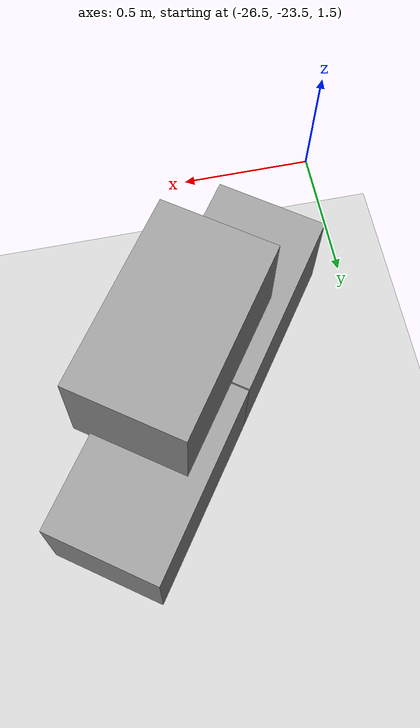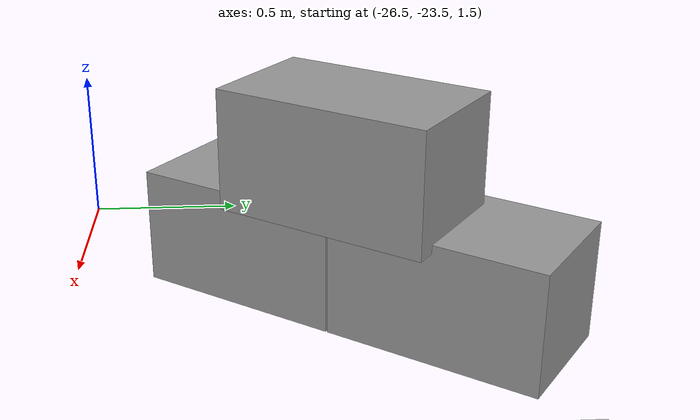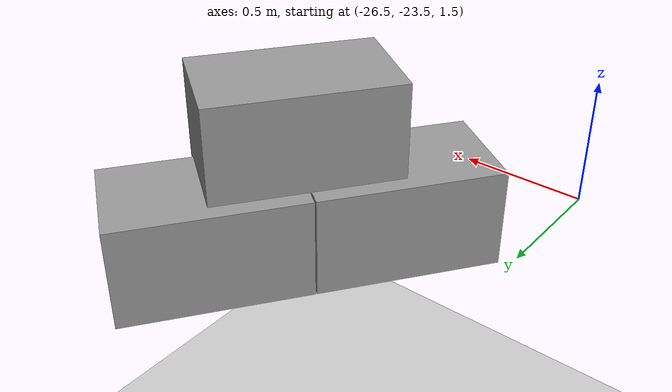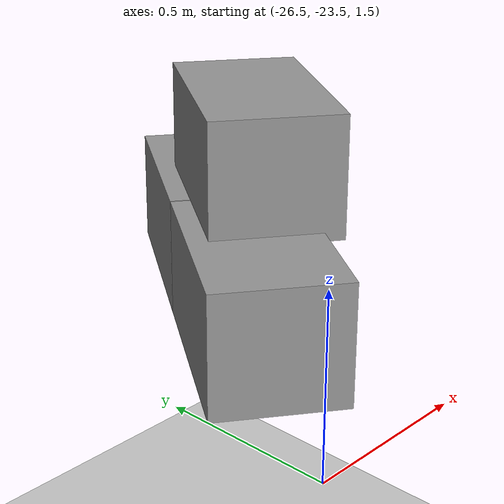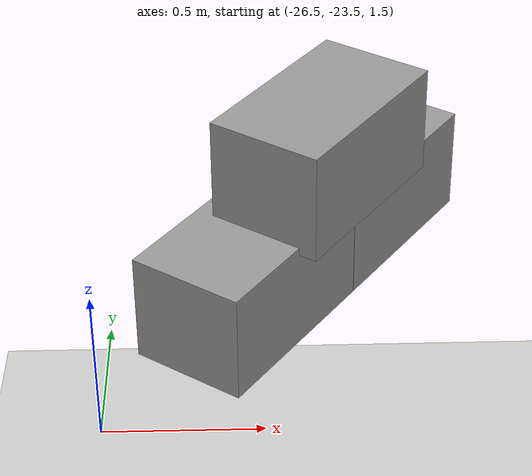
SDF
<sdf version="1.7">
 <world name="default">
  <model name="ground_plane">
   <static>1</static>
   <link name="link">
    <collision name="collision">
     <geometry><plane><normal>0 0 1</normal><size>100 100</size></plane></geometry>
     <surface>
      <contact><collide_bitmask>65535</collide_bitmask></contact>
      <friction><ode><mu>100</mu><mu2>50</mu2></ode></friction>
     </surface>
    </collision>
    <visual name="visual">
     <cast_shadows>0</cast_shadows>
     <geometry><plane><normal>0 0 1</normal><size>100 100</size></plane></geometry>
     <material>
      <script><uri>file://media/materials/scripts/gazebo.material</uri><name>Gazebo/Grey</name></script>
     </material>
    </visual>
   </link>
  </model>
  <model name="Add_Box_clone_clone_3_clone_22">
   <link name="link">
    <inertial>
     <mass>1</mass>
     <inertia>
      <ixx>0.166667</ixx>
      <ixy>0</ixy>
      <ixz>0</ixz>
      <iyy>0.166667</iyy>
      <iyz>0</iyz>
      <izz>0.166667</izz>
     </inertia>
    </inertial>
    <kinematic>1</kinematic>
    <gravity>0</gravity>
    <visual name="visual">
     <geometry><box><size>0.686 0.406 0.381</size></box></geometry>
     <material>
      <script><name>Gazebo/Grey</name><uri>file://media/materials/scripts/gazebo.material</uri></script>
      <shader type="pixel"><normal_map>__default__</normal_map></shader>
      <ambient>0.3 0.3 0.3 1</ambient>
      <diffuse>0.7 0.7 0.7 1</diffuse>
      <specular>0.01 0.01 0.01 1</specular>
      <emissive>0 0 0 1</emissive>
     </material>
    </visual>
    <collision name="collision">
     <geometry><box><size>1 1 1</size></box></geometry>
     <surface>
      <friction>
       <ode><mu>1</mu><mu2>1</mu2><fdir1>0 0 0</fdir1><slip1>0</slip1><slip2>0</slip2></ode>
       <torsional>
        <coefficient>1</coefficient>
        <patch_radius>0</patch_radius>
        <surface_radius>0</surface_radius>
        <use_patch_radius>1</use_patch_radius>
        <ode><slip>0</slip></ode>
       </torsional>
      </friction>
      <bounce><restitution_coefficient>0</restitution_coefficient><threshold>1e+06</threshold></bounce>
      <contact>
       <collide_without_contact>0</collide_without_contact>
       <collide_without_contact_bitmask>1</collide_without_contact_bitmask>
       <collide_bitmask>1</collide_bitmask>
       <ode>
        <soft_cfm>0</soft_cfm>
        <soft_erp>0.2</soft_erp>
        <kp>1e+13</kp>
        <kd>1</kd>
        <max_vel>0.01</max_vel>
        <min_depth>0</min_depth>
       </ode>
       <bullet>
        <split_impulse>1</split_impulse>
        <split_impulse_penetration_threshold>-0.01</split_impulse_penetration_threshold>
        <soft_cfm>0</soft_cfm>
        <soft_erp>0.2</soft_erp>
        <kp>1e+13</kp>
        <kd>1</kd>
       </bullet>
      </contact>
     </surface>
    </collision>
   </link>
   <link name="link_clone">
    <inertial>
     <mass>1</mass>
     <inertia>
      <ixx>0.166667</ixx>
      <ixy>0</ixy>
      <ixz>0</ixz>
      <iyy>0.166667</iyy>
      <iyz>0</iyz>
      <izz>0.166667</izz>
     </inertia>
    </inertial>
    <pose>-0.343354 -0.063316 0.354303 1e-05 -0 0</pose>
    <gravity>0</gravity>
    <visual name="visual">
     <geometry><box><size>0.686 0.406 0.381</size></box></geometry>
     <material>
      <script><name>Gazebo/Grey</name><uri>file://media/materials/scripts/gazebo.material</uri></script>
      <shader type="pixel"><normal_map>__default__</normal_map></shader>
      <ambient>0.3 0.3 0.3 1</ambient>
      <diffuse>0.7 0.7 0.7 1</diffuse>
      <specular>0.01 0.01 0.01 1</specular>
      <emissive>0 0 0 1</emissive>
     </material>
    </visual>
    <collision name="collision">
     <geometry><box><size>1 1 1</size></box></geometry>
     <surface>
      <friction>
       <ode><mu>1</mu><mu2>1</mu2><fdir1>0 0 0</fdir1><slip1>0</slip1><slip2>0</slip2></ode>
       <torsional>
        <coefficient>1</coefficient>
        <patch_radius>0</patch_radius>
        <surface_radius>0</surface_radius>
        <use_patch_radius>1</use_patch_radius>
        <ode><slip>0</slip></ode>
       </torsional>
      </friction>
      <bounce><restitution_coefficient>0</restitution_coefficient><threshold>1e+06</threshold></bounce>
      <contact>
       <collide_without_contact>0</collide_without_contact>
       <collide_without_contact_bitmask>1</collide_without_contact_bitmask>
       <collide_bitmask>1</collide_bitmask>
       <ode>
        <soft_cfm>0</soft_cfm>
        <soft_erp>0.2</soft_erp>
        <kp>1e+13</kp>
        <kd>1</kd>
        <max_vel>0.01</max_vel>
        <min_depth>0</min_depth>
       </ode>
       <bullet>
        <split_impulse>1</split_impulse>
        <split_impulse_penetration_threshold>-0.01</split_impulse_penetration_threshold>
        <soft_cfm>0</soft_cfm>
        <soft_erp>0.2</soft_erp>
        <kp>1e+13</kp>
        <kd>1</kd>
       </bullet>
      </contact>
     </surface>
    </collision>
   </link>
   <link name="link_clone_clone">
    <inertial>
     <mass>1</mass>
     <inertia>
      <ixx>0.166667</ixx>
      <ixy>0</ixy>
      <ixz>0</ixz>
      <iyy>0.166667</iyy>
      <iyz>0</iyz>
      <izz>0.166667</izz>
     </inertia>
    </inertial>
    <pose>-0.690786 -0.000183 -1e-05 2e-05 -0 0</pose>
    <gravity>0</gravity>
    <visual name="visual">
     <geometry><box><size>0.686 0.406 0.381</size></box></geometry>
     <material>
      <script><name>Gazebo/Grey</name><uri>file://media/materials/scripts/gazebo.material</uri></script>
      <shader type="pixel"><normal_map>__default__</normal_map></shader>
      <ambient>0.3 0.3 0.3 1</ambient>
      <diffuse>0.7 0.7 0.7 1</diffuse>
      <specular>0.01 0.01 0.01 1</specular>
      <emissive>0 0 0 1</emissive>
     </material>
    </visual>
    <collision name="collision">
     <geometry><box><size>1 1 1</size></box></geometry>
     <surface>
      <friction>
       <ode><mu>1</mu><mu2>1</mu2><fdir1>0 0 0</fdir1><slip1>0</slip1><slip2>0</slip2></ode>
       <torsional>
        <coefficient>1</coefficient>
        <patch_radius>0</patch_radius>
        <surface_radius>0</surface_radius>
        <use_patch_radius>1</use_patch_radius>
        <ode><slip>0</slip></ode>
       </torsional>
      </friction>
      <bounce><restitution_coefficient>0</restitution_coefficient><threshold>1e+06</threshold></bounce>
      <contact>
       <collide_without_contact>0</collide_without_contact>
       <collide_without_contact_bitmask>1</collide_without_contact_bitmask>
       <collide_bitmask>1</collide_bitmask>
       <ode>
        <soft_cfm>0</soft_cfm>
        <soft_erp>0.2</soft_erp>
        <kp>1e+13</kp>
        <kd>1</kd>
        <max_vel>0.01</max_vel>
        <min_depth>0</min_depth>
       </ode>
       <bullet>
        <split_impulse>1</split_impulse>
        <split_impulse_penetration_threshold>-0.01</split_impulse_penetration_threshold>
        <soft_cfm>0</soft_cfm>
        <soft_erp>0.2</soft_erp>
        <kp>1e+13</kp>
        <kd>1</kd>
       </bullet>
      </contact>
     </surface>
    </collision>
   </link>
   <static>0</static>
   <pose>-25.6489 -22.308 1.61518 0 -0 0.950497</pose>
  </model>
 </world>
</sdf>
